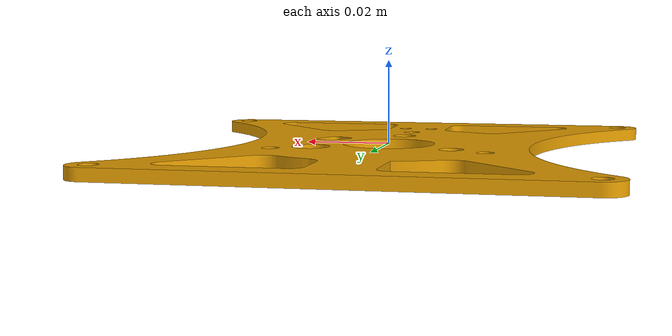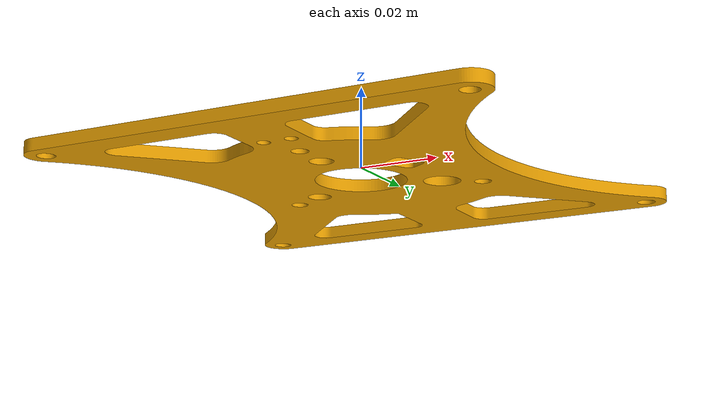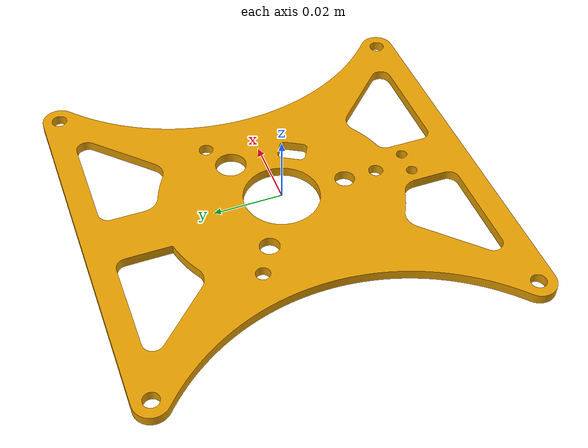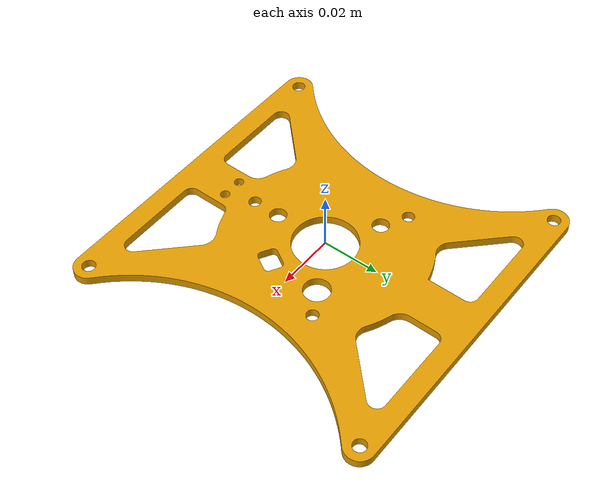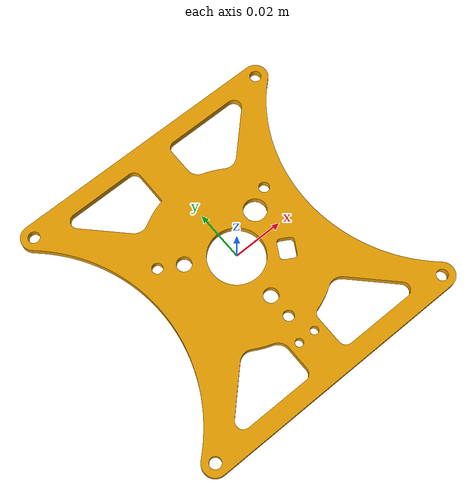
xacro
<?xml version="1.0"?>
<robot>

    <!-- https://upload.wikimedia.org/wikipedia/commons/5/52/Wheelbase_and_Track.png -->

    <link name="base_link">
        <inertial>
            <mass value="7.933506"/>
            <origin xyz="-0.004794 0.00172 0.037912"/>
            <inertia ixx="1.054" ixy="-1.98e-04" ixz="3.722e-03" iyy="1.041"
                     iyz="1.046e-04" izz="1.9"/>
        </inertial>
        <visual>
            <origin xyz="0 0 0" rpy="0 0 0"/>
            <geometry>
                <mesh filename="package://rm2_description/meshes/drone/base_link.stl" scale="1 1 1"/>
            </geometry>
        </visual>
        <collision>
            <origin xyz="0 0 0" rpy="0 0 0"/>
            <geometry>
                <mesh filename="package://rm2_description/meshes/drone/base_link.stl" scale="1 1 1"/>
            </geometry>
        </collision>
    </link>

</robot>
